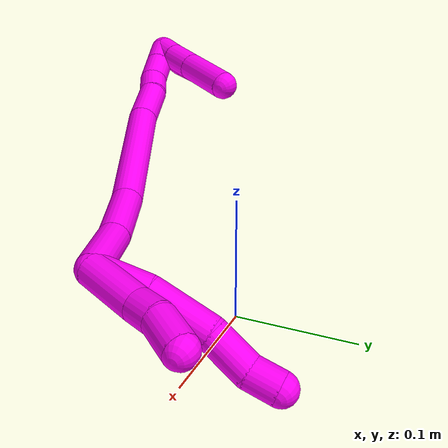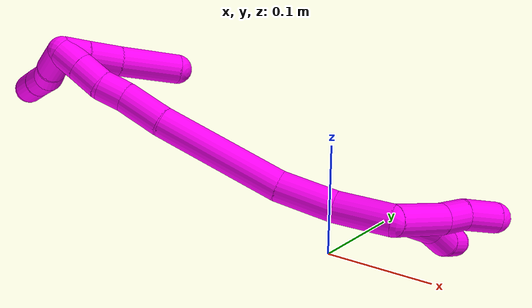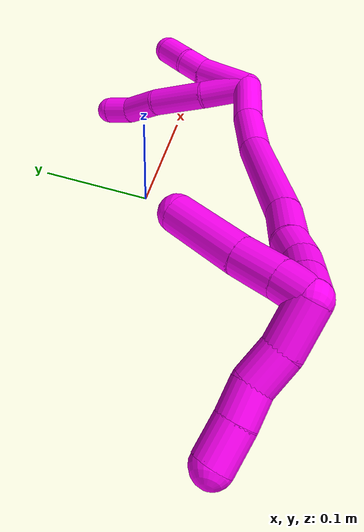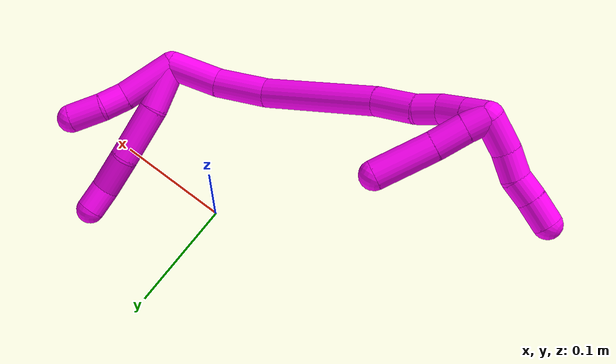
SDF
<sdf version="1.7">
 <world name="default">
  <model name="10">
   <static>0</static>
   <link name="10">
    <collision name="collision-cylinder-e_1_2_8">
     <pose>0.006164 0.019666 0.003071 -1.41587 0.300315 -0.257569</pose>
     <geometry><cylinder><radius>0.0125</radius><length>0.041674</length></cylinder></geometry>
     <surface>
      <friction><ode><mu>1.16</mu><mu2>1.16</mu2><slip1>0</slip1><slip2>0</slip2></ode></friction>
      <contact><ode><kp>1e+06</kp><kd>1</kd><max_vel>0</max_vel><min_depth>0.001</min_depth></ode></contact>
     </surface>
    </collision>
    <visual name="visual-cylinder-e_1_2_8">
     <pose>0.006164 0.019666 0.003071 -1.41587 0.300315 -0.257569</pose>
     <geometry><cylinder><radius>0.0125</radius><length>0.041674</length></cylinder></geometry>
     <material><ambient>1 0 0.964706 1</ambient></material>
    </visual>
    <collision name="collision-cylinder-e_2_8_9">
     <pose>0.017827 0.06389 0.005219 -1.60841 0.220129 -0.228497</pose>
     <geometry><cylinder><radius>0.0125</radius><length>0.050367</length></cylinder></geometry>
     <surface>
      <friction><ode><mu>1.16</mu><mu2>1.16</mu2><slip1>0</slip1><slip2>0</slip2></ode></friction>
      <contact><ode><kp>1e+06</kp><kd>1</kd><max_vel>0</max_vel><min_depth>0.001</min_depth></ode></contact>
     </surface>
    </collision>
    <visual name="visual-cylinder-e_2_8_9">
     <pose>0.017827 0.06389 0.005219 -1.60841 0.220129 -0.228497</pose>
     <geometry><cylinder><radius>0.0125</radius><length>0.050367</length></cylinder></geometry>
     <material><ambient>1 0 0.964706 1</ambient></material>
    </visual>
    <collision name="collision-cylinder-e_3_9_10">
     <pose>0.023873 0.105423 0.001837 -1.71458 0.031869 -0.036815</pose>
     <geometry><cylinder><radius>0.0125</radius><length>0.03432</length></cylinder></geometry>
     <surface>
      <friction><ode><mu>1.16</mu><mu2>1.16</mu2><slip1>0</slip1><slip2>0</slip2></ode></friction>
      <contact><ode><kp>1e+06</kp><kd>1</kd><max_vel>0</max_vel><min_depth>0.001</min_depth></ode></contact>
     </surface>
    </collision>
    <visual name="visual-cylinder-e_3_9_10">
     <pose>0.023873 0.105423 0.001837 -1.71458 0.031869 -0.036815</pose>
     <geometry><cylinder><radius>0.0125</radius><length>0.03432</length></cylinder></geometry>
     <material><ambient>1 0 0.964706 1</ambient></material>
    </visual>
    <collision name="collision-cylinder-e_4_10_6">
     <pose>0.028555 0.133454 -0.001213 -1.62434 0.35744 -0.37666</pose>
     <geometry><cylinder><radius>0.0125</radius><length>0.023639</length></cylinder></geometry>
     <surface>
      <friction><ode><mu>1.16</mu><mu2>1.16</mu2><slip1>0</slip1><slip2>0</slip2></ode></friction>
      <contact><ode><kp>1e+06</kp><kd>1</kd><max_vel>0</max_vel><min_depth>0.001</min_depth></ode></contact>
     </surface>
    </collision>
    <visual name="visual-cylinder-e_4_10_6">
     <pose>0.028555 0.133454 -0.001213 -1.62434 0.35744 -0.37666</pose>
     <geometry><cylinder><radius>0.0125</radius><length>0.023639</length></cylinder></geometry>
     <material><ambient>1 0 0.964706 1</ambient></material>
    </visual>
    <collision name="collision-cylinder-e_1_2_11">
     <pose>0.011615 0.019551 -0.009176 -2.00959 0.493412 -0.754761</pose>
     <geometry><cylinder><radius>0.0125</radius><length>0.049045</length></cylinder></geometry>
     <surface>
      <friction><ode><mu>1.16</mu><mu2>1.16</mu2><slip1>0</slip1><slip2>0</slip2></ode></friction>
      <contact><ode><kp>1e+06</kp><kd>1</kd><max_vel>0</max_vel><min_depth>0.001</min_depth></ode></contact>
     </surface>
    </collision>
    <visual name="visual-cylinder-e_1_2_11">
     <pose>0.011615 0.019551 -0.009176 -2.00959 0.493412 -0.754761</pose>
     <geometry><cylinder><radius>0.0125</radius><length>0.049045</length></cylinder></geometry>
     <material><ambient>1 0 0.964706 1</ambient></material>
    </visual>
    <collision name="collision-cylinder-e_2_11_12">
     <pose>0.029735 0.046456 -0.023008 -2.13537 0.641836 -1.0867</pose>
     <geometry><cylinder><radius>0.0125</radius><length>0.021733</length></cylinder></geometry>
     <surface>
      <friction><ode><mu>1.16</mu><mu2>1.16</mu2><slip1>0</slip1><slip2>0</slip2></ode></friction>
      <contact><ode><kp>1e+06</kp><kd>1</kd><max_vel>0</max_vel><min_depth>0.001</min_depth></ode></contact>
     </surface>
    </collision>
    <visual name="visual-cylinder-e_2_11_12">
     <pose>0.029735 0.046456 -0.023008 -2.13537 0.641836 -1.0867</pose>
     <geometry><cylinder><radius>0.0125</radius><length>0.021733</length></cylinder></geometry>
     <material><ambient>1 0 0.964706 1</ambient></material>
    </visual>
    <collision name="collision-cylinder-e_3_12_5">
     <pose>0.04211 0.063917 -0.036433 -2.28529 0.413388 -0.861381</pose>
     <geometry><cylinder><radius>0.0125</radius><length>0.029222</length></cylinder></geometry>
     <surface>
      <friction><ode><mu>1.16</mu><mu2>1.16</mu2><slip1>0</slip1><slip2>0</slip2></ode></friction>
      <contact><ode><kp>1e+06</kp><kd>1</kd><max_vel>0</max_vel><min_depth>0.001</min_depth></ode></contact>
     </surface>
    </collision>
    <visual name="visual-cylinder-e_3_12_5">
     <pose>0.04211 0.063917 -0.036433 -2.28529 0.413388 -0.861381</pose>
     <geometry><cylinder><radius>0.0125</radius><length>0.029222</length></cylinder></geometry>
     <material><ambient>1 0 0.964706 1</ambient></material>
    </visual>
    <collision name="collision-cylinder-e_1_2_13">
     <pose>-0.004016 -0.003232 0.022244 0.144268 -0.176804 -0.012809</pose>
     <geometry><cylinder><radius>0.0125</radius><length>0.045668</length></cylinder></geometry>
     <surface>
      <friction><ode><mu>1.16</mu><mu2>1.16</mu2><slip1>0</slip1><slip2>0</slip2></ode></friction>
      <contact><ode><kp>1e+06</kp><kd>1</kd><max_vel>0</max_vel><min_depth>0.001</min_depth></ode></contact>
     </surface>
    </collision>
    <visual name="visual-cylinder-e_1_2_13">
     <pose>-0.004016 -0.003232 0.022244 0.144268 -0.176804 -0.012809</pose>
     <geometry><cylinder><radius>0.0125</radius><length>0.045668</length></cylinder></geometry>
     <material><ambient>1 0 0.964706 1</ambient></material>
    </visual>
    <collision name="collision-cylinder-e_2_13_14">
     <pose>-0.010135 -0.013547 0.066492 0.31145 -0.090737 -0.014255</pose>
     <geometry><cylinder><radius>0.0125</radius><length>0.046422</length></cylinder></geometry>
     <surface>
      <friction><ode><mu>1.16</mu><mu2>1.16</mu2><slip1>0</slip1><slip2>0</slip2></ode></friction>
      <contact><ode><kp>1e+06</kp><kd>1</kd><max_vel>0</max_vel><min_depth>0.001</min_depth></ode></contact>
     </surface>
    </collision>
    <visual name="visual-cylinder-e_2_13_14">
     <pose>-0.010135 -0.013547 0.066492 0.31145 -0.090737 -0.014255</pose>
     <geometry><cylinder><radius>0.0125</radius><length>0.046422</length></cylinder></geometry>
     <material><ambient>1 0 0.964706 1</ambient></material>
    </visual>
    <collision name="collision-cylinder-e_3_14_15">
     <pose>-0.010224 -0.043197 0.135447 0.448039 0.038662 0.00881</pose>
     <geometry><cylinder><radius>0.0125</radius><length>0.104263</length></cylinder></geometry>
     <surface>
      <friction><ode><mu>1.16</mu><mu2>1.16</mu2><slip1>0</slip1><slip2>0</slip2></ode></friction>
      <contact><ode><kp>1e+06</kp><kd>1</kd><max_vel>0</max_vel><min_depth>0.001</min_depth></ode></contact>
     </surface>
    </collision>
    <visual name="visual-cylinder-e_3_14_15">
     <pose>-0.010224 -0.043197 0.135447 0.448039 0.038662 0.00881</pose>
     <geometry><cylinder><radius>0.0125</radius><length>0.104263</length></cylinder></geometry>
     <material><ambient>1 0 0.964706 1</ambient></material>
    </visual>
    <collision name="collision-cylinder-e_4_15_16">
     <pose>-0.005681 -0.072126 0.199829 0.349982 0.135375 0.02397</pose>
     <geometry><cylinder><radius>0.0125</radius><length>0.037455</length></cylinder></geometry>
     <surface>
      <friction><ode><mu>1.16</mu><mu2>1.16</mu2><slip1>0</slip1><slip2>0</slip2></ode></friction>
      <contact><ode><kp>1e+06</kp><kd>1</kd><max_vel>0</max_vel><min_depth>0.001</min_depth></ode></contact>
     </surface>
    </collision>
    <visual name="visual-cylinder-e_4_15_16">
     <pose>-0.005681 -0.072126 0.199829 0.349982 0.135375 0.02397</pose>
     <geometry><cylinder><radius>0.0125</radius><length>0.037455</length></cylinder></geometry>
     <material><ambient>1 0 0.964706 1</ambient></material>
    </visual>
    <collision name="collision-cylinder-e_5_16_17">
     <pose>-0.003278 -0.083862 0.226628 0.520848 -0.011496 -0.003064</pose>
     <geometry><cylinder><radius>0.0125</radius><length>0.0216</length></cylinder></geometry>
     <surface>
      <friction><ode><mu>1.16</mu><mu2>1.16</mu2><slip1>0</slip1><slip2>0</slip2></ode></friction>
      <contact><ode><kp>1e+06</kp><kd>1</kd><max_vel>0</max_vel><min_depth>0.001</min_depth></ode></contact>
     </surface>
    </collision>
    <visual name="visual-cylinder-e_5_16_17">
     <pose>-0.003278 -0.083862 0.226628 0.520848 -0.011496 -0.003064</pose>
     <geometry><cylinder><radius>0.0125</radius><length>0.0216</length></cylinder></geometry>
     <material><ambient>1 0 0.964706 1</ambient></material>
    </visual>
    <collision name="collision-cylinder-e_6_17_18">
     <pose>-0.000514 -0.09381 0.246628 0.406249 0.244462 0.050592</pose>
     <geometry><cylinder><radius>0.0125</radius><length>0.02386</length></cylinder></geometry>
     <surface>
      <friction><ode><mu>1.16</mu><mu2>1.16</mu2><slip1>0</slip1><slip2>0</slip2></ode></friction>
      <contact><ode><kp>1e+06</kp><kd>1</kd><max_vel>0</max_vel><min_depth>0.001</min_depth></ode></contact>
     </surface>
    </collision>
    <visual name="visual-cylinder-e_6_17_18">
     <pose>-0.000514 -0.09381 0.246628 0.406249 0.244462 0.050592</pose>
     <geometry><cylinder><radius>0.0125</radius><length>0.02386</length></cylinder></geometry>
     <material><ambient>1 0 0.964706 1</ambient></material>
    </visual>
    <collision name="collision-cylinder-e_7_18_1">
     <pose>0.004814 -0.102335 0.266529 0.402973 0.23775 0.048783</pose>
     <geometry><cylinder><radius>0.0125</radius><length>0.020732</length></cylinder></geometry>
     <surface>
      <friction><ode><mu>1.16</mu><mu2>1.16</mu2><slip1>0</slip1><slip2>0</slip2></ode></friction>
      <contact><ode><kp>1e+06</kp><kd>1</kd><max_vel>0</max_vel><min_depth>0.001</min_depth></ode></contact>
     </surface>
    </collision>
    <visual name="visual-cylinder-e_7_18_1">
     <pose>0.004814 -0.102335 0.266529 0.402973 0.23775 0.048783</pose>
     <geometry><cylinder><radius>0.0125</radius><length>0.020732</length></cylinder></geometry>
     <material><ambient>1 0 0.964706 1</ambient></material>
    </visual>
    <collision name="collision-cylinder-e_1_1_19">
     <pose>0.001456 -0.096679 0.286625 -0.725652 -0.381063 0.146179</pose>
     <geometry><cylinder><radius>0.0125</radius><length>0.03119</length></cylinder></geometry>
     <surface>
      <friction><ode><mu>1.16</mu><mu2>1.16</mu2><slip1>0</slip1><slip2>0</slip2></ode></friction>
      <contact><ode><kp>1e+06</kp><kd>1</kd><max_vel>0</max_vel><min_depth>0.001</min_depth></ode></contact>
     </surface>
    </collision>
    <visual name="visual-cylinder-e_1_1_19">
     <pose>0.001456 -0.096679 0.286625 -0.725652 -0.381063 0.146179</pose>
     <geometry><cylinder><radius>0.0125</radius><length>0.03119</length></cylinder></geometry>
     <material><ambient>1 0 0.964706 1</ambient></material>
    </visual>
    <collision name="collision-cylinder-e_2_19_20">
     <pose>-0.006386 -0.078777 0.305549 -0.797633 -0.174391 0.073642</pose>
     <geometry><cylinder><radius>0.0125</radius><length>0.023536</length></cylinder></geometry>
     <surface>
      <friction><ode><mu>1.16</mu><mu2>1.16</mu2><slip1>0</slip1><slip2>0</slip2></ode></friction>
      <contact><ode><kp>1e+06</kp><kd>1</kd><max_vel>0</max_vel><min_depth>0.001</min_depth></ode></contact>
     </surface>
    </collision>
    <visual name="visual-cylinder-e_2_19_20">
     <pose>-0.006386 -0.078777 0.305549 -0.797633 -0.174391 0.073642</pose>
     <geometry><cylinder><radius>0.0125</radius><length>0.023536</length></cylinder></geometry>
     <material><ambient>1 0 0.964706 1</ambient></material>
    </visual>
    <collision name="collision-cylinder-e_3_20_21">
     <pose>-0.011364 -0.065708 0.322202 -0.508885 -0.291048 0.076198</pose>
     <geometry><cylinder><radius>0.0125</radius><length>0.020462</length></cylinder></geometry>
     <surface>
      <friction><ode><mu>1.16</mu><mu2>1.16</mu2><slip1>0</slip1><slip2>0</slip2></ode></friction>
      <contact><ode><kp>1e+06</kp><kd>1</kd><max_vel>0</max_vel><min_depth>0.001</min_depth></ode></contact>
     </surface>
    </collision>
    <visual name="visual-cylinder-e_3_20_21">
     <pose>-0.011364 -0.065708 0.322202 -0.508885 -0.291048 0.076198</pose>
     <geometry><cylinder><radius>0.0125</radius><length>0.020462</length></cylinder></geometry>
     <material><ambient>1 0 0.964706 1</ambient></material>
    </visual>
    <collision name="collision-cylinder-e_4_21_4">
     <pose>-0.017306 -0.054449 0.340901 -0.568895 -0.244785 0.071898</pose>
     <geometry><cylinder><radius>0.0125</radius><length>0.024812</length></cylinder></geometry>
     <surface>
      <friction><ode><mu>1.16</mu><mu2>1.16</mu2><slip1>0</slip1><slip2>0</slip2></ode></friction>
      <contact><ode><kp>1e+06</kp><kd>1</kd><max_vel>0</max_vel><min_depth>0.001</min_depth></ode></contact>
     </surface>
    </collision>
    <visual name="visual-cylinder-e_4_21_4">
     <pose>-0.017306 -0.054449 0.340901 -0.568895 -0.244785 0.071898</pose>
     <geometry><cylinder><radius>0.0125</radius><length>0.024812</length></cylinder></geometry>
     <material><ambient>1 0 0.964706 1</ambient></material>
    </visual>
    <collision name="collision-cylinder-e_1_1_22">
     <pose>0.011095 -0.09856 0.270649 -2.15845 0.392125 -0.710442</pose>
     <geometry><cylinder><radius>0.0125</radius><length>0.020092</length></cylinder></geometry>
     <surface>
      <friction><ode><mu>1.16</mu><mu2>1.16</mu2><slip1>0</slip1><slip2>0</slip2></ode></friction>
      <contact><ode><kp>1e+06</kp><kd>1</kd><max_vel>0</max_vel><min_depth>0.001</min_depth></ode></contact>
     </surface>
    </collision>
    <visual name="visual-cylinder-e_1_1_22">
     <pose>0.011095 -0.09856 0.270649 -2.15845 0.392125 -0.710442</pose>
     <geometry><cylinder><radius>0.0125</radius><length>0.020092</length></cylinder></geometry>
     <material><ambient>1 0 0.964706 1</ambient></material>
    </visual>
    <collision name="collision-cylinder-e_2_22_23">
     <pose>0.020535 -0.079769 0.259069 -2.09748 0.412524 -0.697661</pose>
     <geometry><cylinder><radius>0.0125</radius><length>0.027942</length></cylinder></geometry>
     <surface>
      <friction><ode><mu>1.16</mu><mu2>1.16</mu2><slip1>0</slip1><slip2>0</slip2></ode></friction>
      <contact><ode><kp>1e+06</kp><kd>1</kd><max_vel>0</max_vel><min_depth>0.001</min_depth></ode></contact>
     </surface>
    </collision>
    <visual name="visual-cylinder-e_2_22_23">
     <pose>0.020535 -0.079769 0.259069 -2.09748 0.412524 -0.697661</pose>
     <geometry><cylinder><radius>0.0125</radius><length>0.027942</length></cylinder></geometry>
     <material><ambient>1 0 0.964706 1</ambient></material>
    </visual>
    <collision name="collision-cylinder-e_3_23_3">
     <pose>0.03705 -0.049185 0.239405 -2.16645 0.433483 -0.787186</pose>
     <geometry><cylinder><radius>0.0125</radius><length>0.051965</length></cylinder></geometry>
     <surface>
      <friction><ode><mu>1.16</mu><mu2>1.16</mu2><slip1>0</slip1><slip2>0</slip2></ode></friction>
      <contact><ode><kp>1e+06</kp><kd>1</kd><max_vel>0</max_vel><min_depth>0.001</min_depth></ode></contact>
     </surface>
    </collision>
    <visual name="visual-cylinder-e_3_23_3">
     <pose>0.03705 -0.049185 0.239405 -2.16645 0.433483 -0.787186</pose>
     <geometry><cylinder><radius>0.0125</radius><length>0.051965</length></cylinder></geometry>
     <material><ambient>1 0 0.964706 1</ambient></material>
    </visual>
    <collision name="collision-sphere-3">
     <pose>0.047964 -0.029667 0.226176 0 -0 0</pose>
     <geometry><sphere><radius>0.0125</radius></sphere></geometry>
     <surface>
      <friction><ode><mu>1.16</mu><mu2>1.16</mu2><slip1>0</slip1><slip2>0</slip2></ode></friction>
      <contact><ode><kp>1e+06</kp><kd>1</kd><max_vel>0</max_vel><min_depth>0.001</min_depth></ode></contact>
     </surface>
    </collision>
    <visual name="visual-sphere-3">
     <pose>0.047964 -0.029667 0.226176 0 -0 0</pose>
     <geometry><sphere><radius>0.0125</radius></sphere></geometry>
     <material><ambient>1 0 0.964706 1</ambient></material>
    </visual>
    <collision name="collision-sphere-23">
     <pose>0.026137 -0.068704 0.252635 0 -0 0</pose>
     <geometry><sphere><radius>0.0125</radius></sphere></geometry>
     <surface>
      <friction><ode><mu>1.16</mu><mu2>1.16</mu2><slip1>0</slip1><slip2>0</slip2></ode></friction>
      <contact><ode><kp>1e+06</kp><kd>1</kd><max_vel>0</max_vel><min_depth>0.001</min_depth></ode></contact>
     </surface>
    </collision>
    <visual name="visual-sphere-23">
     <pose>0.026137 -0.068704 0.252635 0 -0 0</pose>
     <geometry><sphere><radius>0.0125</radius></sphere></geometry>
     <material><ambient>1 0 0.964706 1</ambient></material>
    </visual>
    <collision name="collision-sphere-22">
     <pose>0.014934 -0.090833 0.265502 0 -0 0</pose>
     <geometry><sphere><radius>0.0125</radius></sphere></geometry>
     <surface>
      <friction><ode><mu>1.16</mu><mu2>1.16</mu2><slip1>0</slip1><slip2>0</slip2></ode></friction>
      <contact><ode><kp>1e+06</kp><kd>1</kd><max_vel>0</max_vel><min_depth>0.001</min_depth></ode></contact>
     </surface>
    </collision>
    <visual name="visual-sphere-22">
     <pose>0.014934 -0.090833 0.265502 0 -0 0</pose>
     <geometry><sphere><radius>0.0125</radius></sphere></geometry>
     <material><ambient>1 0 0.964706 1</ambient></material>
    </visual>
    <collision name="collision-sphere-4">
     <pose>-0.020313 -0.047965 0.351042 0 -0 0</pose>
     <geometry><sphere><radius>0.0125</radius></sphere></geometry>
     <surface>
      <friction><ode><mu>1.16</mu><mu2>1.16</mu2><slip1>0</slip1><slip2>0</slip2></ode></friction>
      <contact><ode><kp>1e+06</kp><kd>1</kd><max_vel>0</max_vel><min_depth>0.001</min_depth></ode></contact>
     </surface>
    </collision>
    <visual name="visual-sphere-4">
     <pose>-0.020313 -0.047965 0.351042 0 -0 0</pose>
     <geometry><sphere><radius>0.0125</radius></sphere></geometry>
     <material><ambient>1 0 0.964706 1</ambient></material>
    </visual>
    <collision name="collision-sphere-21">
     <pose>-0.014299 -0.060933 0.33076 0 -0 0</pose>
     <geometry><sphere><radius>0.0125</radius></sphere></geometry>
     <surface>
      <friction><ode><mu>1.16</mu><mu2>1.16</mu2><slip1>0</slip1><slip2>0</slip2></ode></friction>
      <contact><ode><kp>1e+06</kp><kd>1</kd><max_vel>0</max_vel><min_depth>0.001</min_depth></ode></contact>
     </surface>
    </collision>
    <visual name="visual-sphere-21">
     <pose>-0.014299 -0.060933 0.33076 0 -0 0</pose>
     <geometry><sphere><radius>0.0125</radius></sphere></geometry>
     <material><ambient>1 0 0.964706 1</ambient></material>
    </visual>
    <collision name="collision-sphere-20">
     <pose>-0.008428 -0.070483 0.313643 0 -0 0</pose>
     <geometry><sphere><radius>0.0125</radius></sphere></geometry>
     <surface>
      <friction><ode><mu>1.16</mu><mu2>1.16</mu2><slip1>0</slip1><slip2>0</slip2></ode></friction>
      <contact><ode><kp>1e+06</kp><kd>1</kd><max_vel>0</max_vel><min_depth>0.001</min_depth></ode></contact>
     </surface>
    </collision>
    <visual name="visual-sphere-20">
     <pose>-0.008428 -0.070483 0.313643 0 -0 0</pose>
     <geometry><sphere><radius>0.0125</radius></sphere></geometry>
     <material><ambient>1 0 0.964706 1</ambient></material>
    </visual>
    <collision name="collision-sphere-11">
     <pose>0.023229 0.039103 -0.018351 0 -0 0</pose>
     <geometry><sphere><radius>0.0125</radius></sphere></geometry>
     <surface>
      <friction><ode><mu>1.16</mu><mu2>1.16</mu2><slip1>0</slip1><slip2>0</slip2></ode></friction>
      <contact><ode><kp>1e+06</kp><kd>1</kd><max_vel>0</max_vel><min_depth>0.001</min_depth></ode></contact>
     </surface>
    </collision>
    <visual name="visual-sphere-11">
     <pose>0.023229 0.039103 -0.018351 0 -0 0</pose>
     <geometry><sphere><radius>0.0125</radius></sphere></geometry>
     <material><ambient>1 0 0.964706 1</ambient></material>
    </visual>
    <collision name="collision-sphere-6">
     <pose>0.03269 0.144511 -0.001806 0 -0 0</pose>
     <geometry><sphere><radius>0.0125</radius></sphere></geometry>
     <surface>
      <friction><ode><mu>1.16</mu><mu2>1.16</mu2><slip1>0</slip1><slip2>0</slip2></ode></friction>
      <contact><ode><kp>1e+06</kp><kd>1</kd><max_vel>0</max_vel><min_depth>0.001</min_depth></ode></contact>
     </surface>
    </collision>
    <visual name="visual-sphere-6">
     <pose>0.03269 0.144511 -0.001806 0 -0 0</pose>
     <geometry><sphere><radius>0.0125</radius></sphere></geometry>
     <material><ambient>1 0 0.964706 1</ambient></material>
    </visual>
    <collision name="collision-sphere-10">
     <pose>0.02442 0.122398 -0.000621 0 -0 0</pose>
     <geometry><sphere><radius>0.0125</radius></sphere></geometry>
     <surface>
      <friction><ode><mu>1.16</mu><mu2>1.16</mu2><slip1>0</slip1><slip2>0</slip2></ode></friction>
      <contact><ode><kp>1e+06</kp><kd>1</kd><max_vel>0</max_vel><min_depth>0.001</min_depth></ode></contact>
     </surface>
    </collision>
    <visual name="visual-sphere-10">
     <pose>0.02442 0.122398 -0.000621 0 -0 0</pose>
     <geometry><sphere><radius>0.0125</radius></sphere></geometry>
     <material><ambient>1 0 0.964706 1</ambient></material>
    </visual>
    <collision name="collision-sphere-9">
     <pose>0.023326 0.088449 0.004294 0 -0 0</pose>
     <geometry><sphere><radius>0.0125</radius></sphere></geometry>
     <surface>
      <friction><ode><mu>1.16</mu><mu2>1.16</mu2><slip1>0</slip1><slip2>0</slip2></ode></friction>
      <contact><ode><kp>1e+06</kp><kd>1</kd><max_vel>0</max_vel><min_depth>0.001</min_depth></ode></contact>
     </surface>
    </collision>
    <visual name="visual-sphere-9">
     <pose>0.023326 0.088449 0.004294 0 -0 0</pose>
     <geometry><sphere><radius>0.0125</radius></sphere></geometry>
     <material><ambient>1 0 0.964706 1</ambient></material>
    </visual>
    <collision name="collision-sphere-2">
     <geometry><sphere><radius>0.0125</radius></sphere></geometry>
     <surface>
      <friction><ode><mu>1.16</mu><mu2>1.16</mu2><slip1>0</slip1><slip2>0</slip2></ode></friction>
      <contact><ode><kp>1e+06</kp><kd>1</kd><max_vel>0</max_vel><min_depth>0.001</min_depth></ode></contact>
     </surface>
    </collision>
    <visual name="visual-sphere-2">
     <geometry><sphere><radius>0.0125</radius></sphere></geometry>
     <material><ambient>1 0 0.964706 1</ambient></material>
    </visual>
    <collision name="collision-sphere-19">
     <pose>-0.004344 -0.087072 0.297455 0 -0 0</pose>
     <geometry><sphere><radius>0.0125</radius></sphere></geometry>
     <surface>
      <friction><ode><mu>1.16</mu><mu2>1.16</mu2><slip1>0</slip1><slip2>0</slip2></ode></friction>
      <contact><ode><kp>1e+06</kp><kd>1</kd><max_vel>0</max_vel><min_depth>0.001</min_depth></ode></contact>
     </surface>
    </collision>
    <visual name="visual-sphere-19">
     <pose>-0.004344 -0.087072 0.297455 0 -0 0</pose>
     <geometry><sphere><radius>0.0125</radius></sphere></geometry>
     <material><ambient>1 0 0.964706 1</ambient></material>
    </visual>
    <collision name="collision-sphere-8">
     <pose>0.012328 0.039332 0.006143 0 -0 0</pose>
     <geometry><sphere><radius>0.0125</radius></sphere></geometry>
     <surface>
      <friction><ode><mu>1.16</mu><mu2>1.16</mu2><slip1>0</slip1><slip2>0</slip2></ode></friction>
      <contact><ode><kp>1e+06</kp><kd>1</kd><max_vel>0</max_vel><min_depth>0.001</min_depth></ode></contact>
     </surface>
    </collision>
    <visual name="visual-sphere-8">
     <pose>0.012328 0.039332 0.006143 0 -0 0</pose>
     <geometry><sphere><radius>0.0125</radius></sphere></geometry>
     <material><ambient>1 0 0.964706 1</ambient></material>
    </visual>
    <collision name="collision-sphere-12">
     <pose>0.03624 0.053809 -0.027665 0 -0 0</pose>
     <geometry><sphere><radius>0.0125</radius></sphere></geometry>
     <surface>
      <friction><ode><mu>1.16</mu><mu2>1.16</mu2><slip1>0</slip1><slip2>0</slip2></ode></friction>
      <contact><ode><kp>1e+06</kp><kd>1</kd><max_vel>0</max_vel><min_depth>0.001</min_depth></ode></contact>
     </surface>
    </collision>
    <visual name="visual-sphere-12">
     <pose>0.03624 0.053809 -0.027665 0 -0 0</pose>
     <geometry><sphere><radius>0.0125</radius></sphere></geometry>
     <material><ambient>1 0 0.964706 1</ambient></material>
    </visual>
    <collision name="collision-sphere-5">
     <pose>0.047979 0.074025 -0.0452 0 -0 0</pose>
     <geometry><sphere><radius>0.0125</radius></sphere></geometry>
     <surface>
      <friction><ode><mu>1.16</mu><mu2>1.16</mu2><slip1>0</slip1><slip2>0</slip2></ode></friction>
      <contact><ode><kp>1e+06</kp><kd>1</kd><max_vel>0</max_vel><min_depth>0.001</min_depth></ode></contact>
     </surface>
    </collision>
    <visual name="visual-sphere-5">
     <pose>0.047979 0.074025 -0.0452 0 -0 0</pose>
     <geometry><sphere><radius>0.0125</radius></sphere></geometry>
     <material><ambient>1 0 0.964706 1</ambient></material>
    </visual>
    <collision name="collision-sphere-13">
     <pose>-0.008032 -0.006463 0.044489 0 -0 0</pose>
     <geometry><sphere><radius>0.0125</radius></sphere></geometry>
     <surface>
      <friction><ode><mu>1.16</mu><mu2>1.16</mu2><slip1>0</slip1><slip2>0</slip2></ode></friction>
      <contact><ode><kp>1e+06</kp><kd>1</kd><max_vel>0</max_vel><min_depth>0.001</min_depth></ode></contact>
     </surface>
    </collision>
    <visual name="visual-sphere-13">
     <pose>-0.008032 -0.006463 0.044489 0 -0 0</pose>
     <geometry><sphere><radius>0.0125</radius></sphere></geometry>
     <material><ambient>1 0 0.964706 1</ambient></material>
    </visual>
    <collision name="collision-sphere-14">
     <pose>-0.012239 -0.02063 0.088496 0 -0 0</pose>
     <geometry><sphere><radius>0.0125</radius></sphere></geometry>
     <surface>
      <friction><ode><mu>1.16</mu><mu2>1.16</mu2><slip1>0</slip1><slip2>0</slip2></ode></friction>
      <contact><ode><kp>1e+06</kp><kd>1</kd><max_vel>0</max_vel><min_depth>0.001</min_depth></ode></contact>
     </surface>
    </collision>
    <visual name="visual-sphere-14">
     <pose>-0.012239 -0.02063 0.088496 0 -0 0</pose>
     <geometry><sphere><radius>0.0125</radius></sphere></geometry>
     <material><ambient>1 0 0.964706 1</ambient></material>
    </visual>
    <collision name="collision-sphere-15">
     <pose>-0.008209 -0.065763 0.182398 0 -0 0</pose>
     <geometry><sphere><radius>0.0125</radius></sphere></geometry>
     <surface>
      <friction><ode><mu>1.16</mu><mu2>1.16</mu2><slip1>0</slip1><slip2>0</slip2></ode></friction>
      <contact><ode><kp>1e+06</kp><kd>1</kd><max_vel>0</max_vel><min_depth>0.001</min_depth></ode></contact>
     </surface>
    </collision>
    <visual name="visual-sphere-15">
     <pose>-0.008209 -0.065763 0.182398 0 -0 0</pose>
     <geometry><sphere><radius>0.0125</radius></sphere></geometry>
     <material><ambient>1 0 0.964706 1</ambient></material>
    </visual>
    <collision name="collision-sphere-16">
     <pose>-0.003154 -0.078488 0.217261 0 -0 0</pose>
     <geometry><sphere><radius>0.0125</radius></sphere></geometry>
     <surface>
      <friction><ode><mu>1.16</mu><mu2>1.16</mu2><slip1>0</slip1><slip2>0</slip2></ode></friction>
      <contact><ode><kp>1e+06</kp><kd>1</kd><max_vel>0</max_vel><min_depth>0.001</min_depth></ode></contact>
     </surface>
    </collision>
    <visual name="visual-sphere-16">
     <pose>-0.003154 -0.078488 0.217261 0 -0 0</pose>
     <geometry><sphere><radius>0.0125</radius></sphere></geometry>
     <material><ambient>1 0 0.964706 1</ambient></material>
    </visual>
    <collision name="collision-sphere-17">
     <pose>-0.003402 -0.089236 0.235995 0 -0 0</pose>
     <geometry><sphere><radius>0.0125</radius></sphere></geometry>
     <surface>
      <friction><ode><mu>1.16</mu><mu2>1.16</mu2><slip1>0</slip1><slip2>0</slip2></ode></friction>
      <contact><ode><kp>1e+06</kp><kd>1</kd><max_vel>0</max_vel><min_depth>0.001</min_depth></ode></contact>
     </surface>
    </collision>
    <visual name="visual-sphere-17">
     <pose>-0.003402 -0.089236 0.235995 0 -0 0</pose>
     <geometry><sphere><radius>0.0125</radius></sphere></geometry>
     <material><ambient>1 0 0.964706 1</ambient></material>
    </visual>
    <collision name="collision-sphere-18">
     <pose>0.002373 -0.098384 0.257261 0 -0 0</pose>
     <geometry><sphere><radius>0.0125</radius></sphere></geometry>
     <surface>
      <friction><ode><mu>1.16</mu><mu2>1.16</mu2><slip1>0</slip1><slip2>0</slip2></ode></friction>
      <contact><ode><kp>1e+06</kp><kd>1</kd><max_vel>0</max_vel><min_depth>0.001</min_depth></ode></contact>
     </surface>
    </collision>
    <visual name="visual-sphere-18">
     <pose>0.002373 -0.098384 0.257261 0 -0 0</pose>
     <geometry><sphere><radius>0.0125</radius></sphere></geometry>
     <material><ambient>1 0 0.964706 1</ambient></material>
    </visual>
    <collision name="collision-sphere-1">
     <pose>0.007256 -0.106286 0.275796 0 -0 0</pose>
     <geometry><sphere><radius>0.0125</radius></sphere></geometry>
     <surface>
      <friction><ode><mu>1.16</mu><mu2>1.16</mu2><slip1>0</slip1><slip2>0</slip2></ode></friction>
      <contact><ode><kp>1e+06</kp><kd>1</kd><max_vel>0</max_vel><min_depth>0.001</min_depth></ode></contact>
     </surface>
    </collision>
    <visual name="visual-sphere-1">
     <pose>0.007256 -0.106286 0.275796 0 -0 0</pose>
     <geometry><sphere><radius>0.0125</radius></sphere></geometry>
     <material><ambient>1 0 0.964706 1</ambient></material>
    </visual>
    <inertial>
     <pose>0.006846 -0.018449 0.128967 0 -0 0</pose>
     <mass>0.75</mass>
     <inertia><ixx>0.000168</ixx><ixy>0</ixy><ixz>0</ixz><iyy>0.000118</iyy><iyz>0</iyz><izz>-8e-06</izz></inertia>
    </inertial>
   </link>
   <pose>0.096832 -0.065912 0.074503 -1.34384 -0.894475 1.40759</pose>
  </model>
 </world>
</sdf>
